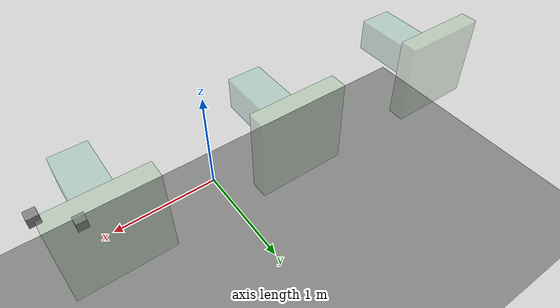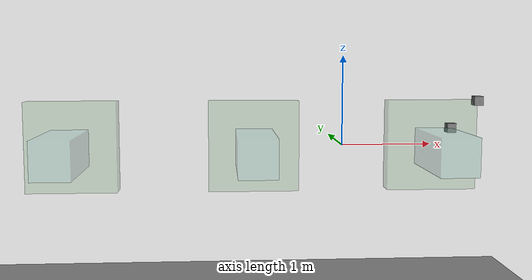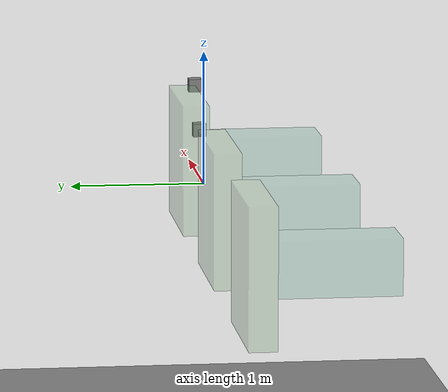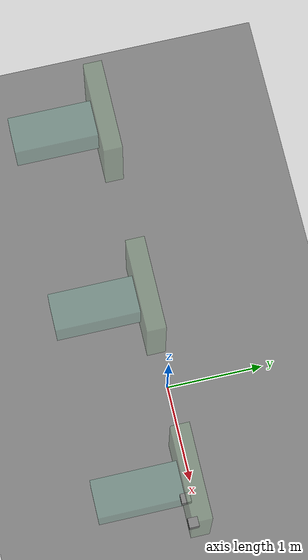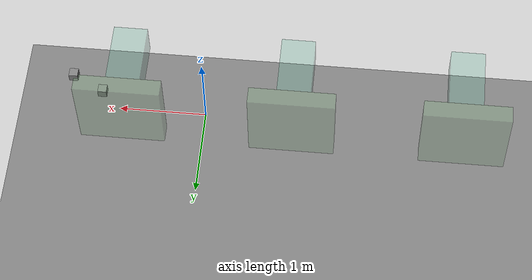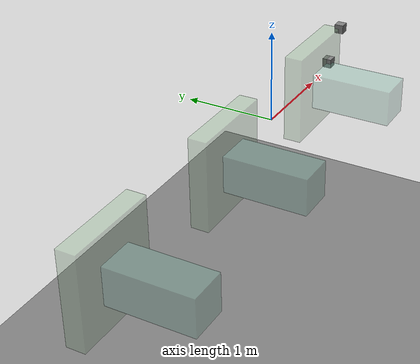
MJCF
<mujoco model="equality_connect">
  <option>
    <flag contact="disable"/>
  </option>

  <default>
    <default class="static">
      <geom size=".5 .1 .5" rgba=".5 .7 .5 .3"/>
    </default>
    <default class="free">
      <geom type="box" size=".2" fromto="0 0 0 0 -1 0" rgba=".4 .7 .6 .3"/>
    </default>
  </default>

  <worldbody>
    <geom pos="0 0 -2" type="plane" size="10 10 .01"/>

    <body name="box1" pos="-3 0 0">
      <geom type="box" class="static"/>
    </body>
    <body name="beam1" pos="-3 0 0">
      <freejoint/>
      <geom class="free"/>
    </body>

    <body name="box2" pos="-1 0 0">
      <geom type="box" class="static"/>
    </body>
    <body name="beam2" pos="-1 0 0">
      <freejoint/>
      <geom class="free"/>
    </body>

    <body name="box3" pos="1 0 0">
      <geom type="box" class="static"/>
      <site name="box3" pos=".5 -.1 .5" type="box" size=".05 .05 .05"/>
    </body>
    <body name="beam3" pos="1 0 0">
      <freejoint/>
      <geom class="free"/>
      <site name="beam3" pos=".2 -.1 .2" type="box" size=".05 .05 .05"/>
    </body>

  </worldbody>

  <equality>
    <connect name="world_to_body" body1="beam1" anchor="0.5 0 0"/>
    <connect name="bodies" body1="box2" body2="beam2" anchor=".5 .1 .5"/>
    <connect name="sites" site1="box3" site2="beam3"/>
  </equality>
</mujoco>
